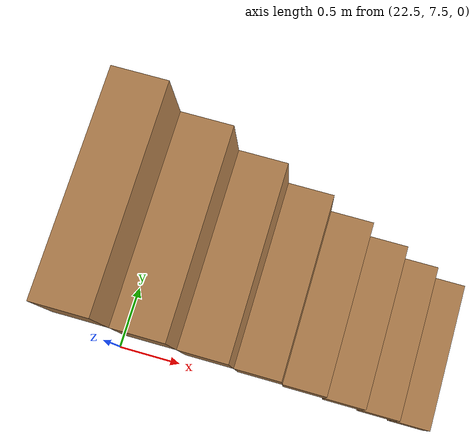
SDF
<sdf version="1.7">
 <world name="RaSpectLoc_ign">
  <model name="CVSSP">
   <pose>23.8714 24.094 0 0 -0 0</pose>
   <link name="Stairs_6">
    <visual name="Stairs_6_Visual_0">
     <pose>0.989254 -16.0013 0.15625 0 -0 -1.5708</pose>
     <geometry><box><size>1.145 0.28375 0.3125</size></box></geometry>
     <material>
      <script><uri>file://media/materials/scripts/gazebo.material</uri><name>Gazebo/Wood</name></script>
      <ambient>1 1 1 1</ambient>
     </material>
    </visual>
    <collision name="Stairs_6_Collision_0">
     <geometry><box><size>1.145 0.28375 0.3125</size></box></geometry>
     <pose>0.989254 -16.0013 0.15625 0 -0 -1.5708</pose>
    </collision>
    <visual name="Stairs_6_Visual_1">
     <pose>0.705504 -16.0013 0.46875 0 -0 -1.5708</pose>
     <geometry><box><size>1.145 0.28375 0.3125</size></box></geometry>
     <material>
      <script><uri>file://media/materials/scripts/gazebo.material</uri><name>Gazebo/Wood</name></script>
      <ambient>1 1 1 1</ambient>
     </material>
    </visual>
    <collision name="Stairs_6_Collision_1">
     <geometry><box><size>1.145 0.28375 0.3125</size></box></geometry>
     <pose>0.705504 -16.0013 0.46875 0 -0 -1.5708</pose>
    </collision>
    <visual name="Stairs_6_Visual_2">
     <pose>0.421754 -16.0013 0.78125 0 -0 -1.5708</pose>
     <geometry><box><size>1.145 0.28375 0.3125</size></box></geometry>
     <material>
      <script><uri>file://media/materials/scripts/gazebo.material</uri><name>Gazebo/Wood</name></script>
      <ambient>1 1 1 1</ambient>
     </material>
    </visual>
    <collision name="Stairs_6_Collision_2">
     <geometry><box><size>1.145 0.28375 0.3125</size></box></geometry>
     <pose>0.421754 -16.0013 0.78125 0 -0 -1.5708</pose>
    </collision>
    <visual name="Stairs_6_Visual_3">
     <pose>0.138004 -16.0013 1.09375 0 -0 -1.5708</pose>
     <geometry><box><size>1.145 0.28375 0.3125</size></box></geometry>
     <material>
      <script><uri>file://media/materials/scripts/gazebo.material</uri><name>Gazebo/Wood</name></script>
      <ambient>1 1 1 1</ambient>
     </material>
    </visual>
    <collision name="Stairs_6_Collision_3">
     <geometry><box><size>1.145 0.28375 0.3125</size></box></geometry>
     <pose>0.138004 -16.0013 1.09375 0 -0 -1.5708</pose>
    </collision>
    <visual name="Stairs_6_Visual_4">
     <pose>-0.145746 -16.0013 1.40625 0 -0 -1.5708</pose>
     <geometry><box><size>1.145 0.28375 0.3125</size></box></geometry>
     <material>
      <script><uri>file://media/materials/scripts/gazebo.material</uri><name>Gazebo/Wood</name></script>
      <ambient>1 1 1 1</ambient>
     </material>
    </visual>
    <collision name="Stairs_6_Collision_4">
     <geometry><box><size>1.145 0.28375 0.3125</size></box></geometry>
     <pose>-0.145746 -16.0013 1.40625 0 -0 -1.5708</pose>
    </collision>
    <visual name="Stairs_6_Visual_5">
     <pose>-0.429496 -16.0013 1.71875 0 -0 -1.5708</pose>
     <geometry><box><size>1.145 0.28375 0.3125</size></box></geometry>
     <material>
      <script><uri>file://media/materials/scripts/gazebo.material</uri><name>Gazebo/Wood</name></script>
      <ambient>1 1 1 1</ambient>
     </material>
    </visual>
    <collision name="Stairs_6_Collision_5">
     <geometry><box><size>1.145 0.28375 0.3125</size></box></geometry>
     <pose>-0.429496 -16.0013 1.71875 0 -0 -1.5708</pose>
    </collision>
    <visual name="Stairs_6_Visual_6">
     <pose>-0.713246 -16.0013 2.03125 0 -0 -1.5708</pose>
     <geometry><box><size>1.145 0.28375 0.3125</size></box></geometry>
     <material>
      <script><uri>file://media/materials/scripts/gazebo.material</uri><name>Gazebo/Wood</name></script>
      <ambient>1 1 1 1</ambient>
     </material>
    </visual>
    <collision name="Stairs_6_Collision_6">
     <geometry><box><size>1.145 0.28375 0.3125</size></box></geometry>
     <pose>-0.713246 -16.0013 2.03125 0 -0 -1.5708</pose>
    </collision>
    <visual name="Stairs_6_Visual_7">
     <pose>-0.996996 -16.0013 2.34375 0 -0 -1.5708</pose>
     <geometry><box><size>1.145 0.28375 0.3125</size></box></geometry>
     <material>
      <script><uri>file://media/materials/scripts/gazebo.material</uri><name>Gazebo/Wood</name></script>
      <ambient>1 1 1 1</ambient>
     </material>
    </visual>
    <collision name="Stairs_6_Collision_7">
     <geometry><box><size>1.145 0.28375 0.3125</size></box></geometry>
     <pose>-0.996996 -16.0013 2.34375 0 -0 -1.5708</pose>
    </collision>
   </link>
   <static>1</static>
  </model>
 </world>
</sdf>
